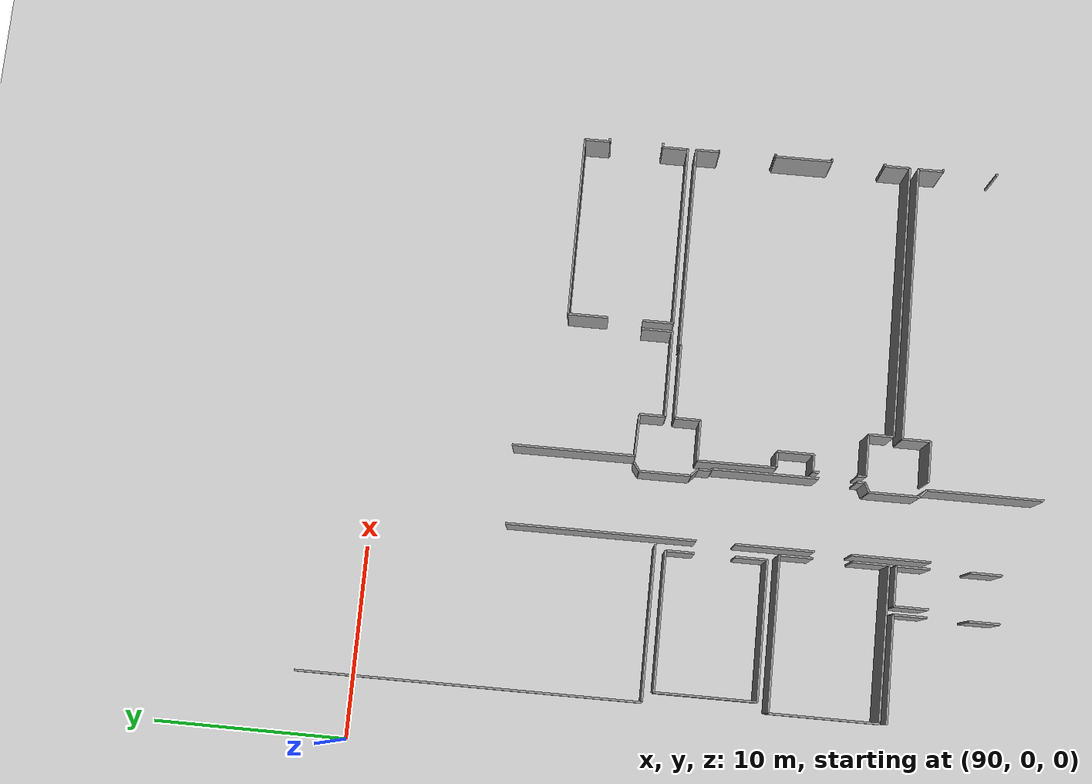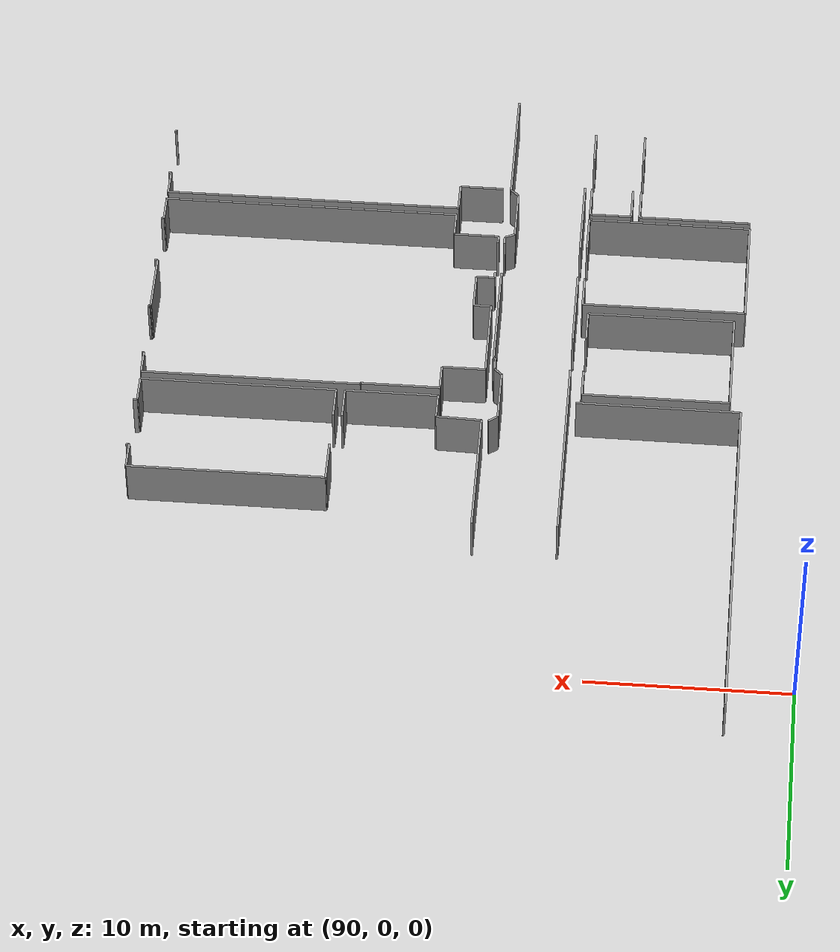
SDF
<sdf version="1.6">
 <world name="default">
  <model name="ground_plane">
   <static>1</static>
   <link name="link">
    <collision name="collision">
     <geometry><plane><normal>0 0 1</normal><size>100 100</size></plane></geometry>
     <surface><friction><ode><mu>100</mu><mu2>50</mu2></ode></friction></surface>
    </collision>
    <visual name="visual">
     <cast_shadows>0</cast_shadows>
     <geometry><plane><normal>0 0 1</normal><size>100 100</size></plane></geometry>
     <material>
      <script><uri>file://media/materials/scripts/gazebo.material</uri><name>Gazebo/Grey</name></script>
     </material>
    </visual>
   </link>
  </model>
  <model name="50036894">
   <static>1</static>
   <link name="Wall_636">
    <collision name="Wall_636_Collision">
     <geometry><box><size>4.0667220359 0.1 2.5</size></box></geometry>
     <pose>2.03336101795 0 1.25 0 0 0</pose>
    </collision>
    <visual name="Wall_636_Visual">
     <pose>2.03336101795 0 1.25 0 0 0</pose>
     <geometry><box><size>4.0667220359 0.1 2.5</size></box></geometry>
     <material>
      <script><uri>file://media/materials/scripts/gazebo.material</uri><name>Gazebo/Grey</name></script>
      <ambient>1 1 1 1</ambient>
     </material>
    </visual>
    <pose>224.466775292 -96.5278420582 0 0 0 1.57079632679</pose>
   </link>
   <link name="Wall_637">
    <collision name="Wall_637_Collision">
     <geometry><box><size>4.05987484863 0.1 2.5</size></box></geometry>
     <pose>2.02993742432 0 1.25 0 0 0</pose>
    </collision>
    <visual name="Wall_637_Visual">
     <pose>2.02993742432 0 1.25 0 0 0</pose>
     <geometry><box><size>4.05987484863 0.1 2.5</size></box></geometry>
     <material>
      <script><uri>file://media/materials/scripts/gazebo.material</uri><name>Gazebo/Grey</name></script>
      <ambient>1 1 1 1</ambient>
     </material>
    </visual>
    <pose>224.466775292 -90.5307204129 0 0 0 1.57079632679</pose>
   </link>
   <link name="Wall_638">
    <collision name="Wall_638_Collision">
     <geometry><box><size>9.86552885012 0.1 2.5</size></box></geometry>
     <pose>4.93276442506 0 1.25 0 0 0</pose>
    </collision>
    <visual name="Wall_638_Visual">
     <pose>4.93276442506 0 1.25 0 0 0</pose>
     <geometry><box><size>9.86552885012 0.1 2.5</size></box></geometry>
     <material>
      <script><uri>file://media/materials/scripts/gazebo.material</uri><name>Gazebo/Grey</name></script>
      <ambient>1 1 1 1</ambient>
     </material>
    </visual>
    <pose>224.466775292 -84.4542221151 0 0 0 1.57079632679</pose>
   </link>
   <link name="Wall_680">
    <collision name="Wall_680_Collision">
     <geometry><box><size>0.539785866235 0.1 2.5</size></box></geometry>
     <pose>0.269892933118 0 1.25 0 0 0</pose>
    </collision>
    <visual name="Wall_680_Visual">
     <pose>0.269892933118 0 1.25 0 0 0</pose>
     <geometry><box><size>0.539785866235 0.1 2.5</size></box></geometry>
     <material>
      <script><uri>file://media/materials/scripts/gazebo.material</uri><name>Gazebo/Grey</name></script>
      <ambient>1 1 1 1</ambient>
     </material>
    </visual>
    <pose>228.240336273 -80.9068719132 0 0 0 -2.51970472014</pose>
   </link>
   <link name="Wall_681">
    <collision name="Wall_681_Collision">
     <geometry><box><size>2.67192463022 0.1 2.5</size></box></geometry>
     <pose>1.33596231511 0 1.25 0 0 0</pose>
    </collision>
    <visual name="Wall_681_Visual">
     <pose>1.33596231511 0 1.25 0 0 0</pose>
     <geometry><box><size>2.67192463022 0.1 2.5</size></box></geometry>
     <material>
      <script><uri>file://media/materials/scripts/gazebo.material</uri><name>Gazebo/Grey</name></script>
      <ambient>1 1 1 1</ambient>
     </material>
    </visual>
    <pose>227.801609089 -81.2213353283 0 0 0 -1.57079632679</pose>
   </link>
   <link name="Wall_682">
    <collision name="Wall_682_Collision">
     <geometry><box><size>0.514282648867 0.1 2.5</size></box></geometry>
     <pose>0.257141324433 0 1.25 0 0 0</pose>
    </collision>
    <visual name="Wall_682_Visual">
     <pose>0.257141324433 0 1.25 0 0 0</pose>
     <geometry><box><size>0.514282648867 0.1 2.5</size></box></geometry>
     <material>
      <script><uri>file://media/materials/scripts/gazebo.material</uri><name>Gazebo/Grey</name></script>
      <ambient>1 1 1 1</ambient>
     </material>
    </visual>
    <pose>227.801609089 -83.8932599585 0 0 0 -0.759941508248</pose>
   </link>
   <link name="Wall_683">
    <collision name="Wall_683_Collision">
     <geometry><box><size>0.695877105669 0.1 2.5</size></box></geometry>
     <pose>0.347938552834 0 1.25 0 0 0</pose>
    </collision>
    <visual name="Wall_683_Visual">
     <pose>0.347938552834 0 1.25 0 0 0</pose>
     <geometry><box><size>0.695877105669 0.1 2.5</size></box></geometry>
     <material>
      <script><uri>file://media/materials/scripts/gazebo.material</uri><name>Gazebo/Grey</name></script>
      <ambient>1 1 1 1</ambient>
     </material>
    </visual>
    <pose>228.174400396 -84.2475384996 0 0 0 -1.57079632679</pose>
   </link>
   <link name="Wall_684">
    <collision name="Wall_684_Collision">
     <geometry><box><size>0.0912958301898 0.1 2.5</size></box></geometry>
     <pose>0.0456479150949 0 1.25 0 0 0</pose>
    </collision>
    <visual name="Wall_684_Visual">
     <pose>0.0456479150949 0 1.25 0 0 0</pose>
     <geometry><box><size>0.0912958301898 0.1 2.5</size></box></geometry>
     <material>
      <script><uri>file://media/materials/scripts/gazebo.material</uri><name>Gazebo/Grey</name></script>
      <ambient>1 1 1 1</ambient>
     </material>
    </visual>
    <pose>228.174400396 -84.9434156052 0 0 0 0.0</pose>
   </link>
   <link name="Wall_685">
    <collision name="Wall_685_Collision">
     <geometry><box><size>5.56397365101 0.1 2.5</size></box></geometry>
     <pose>2.7819868255 0 1.25 0 0 0</pose>
    </collision>
    <visual name="Wall_685_Visual">
     <pose>2.7819868255 0 1.25 0 0 0</pose>
     <geometry><box><size>5.56397365101 0.1 2.5</size></box></geometry>
     <material>
      <script><uri>file://media/materials/scripts/gazebo.material</uri><name>Gazebo/Grey</name></script>
      <ambient>1 1 1 1</ambient>
     </material>
    </visual>
    <pose>228.265696226 -84.9434156052 0 0 0 -1.57079632679</pose>
   </link>
   <link name="Wall_686">
    <collision name="Wall_686_Collision">
     <geometry><box><size>0.39789765991 0.1 2.5</size></box></geometry>
     <pose>0.198948829955 0 1.25 0 0 0</pose>
    </collision>
    <visual name="Wall_686_Visual">
     <pose>0.198948829955 0 1.25 0 0 0</pose>
     <geometry><box><size>0.39789765991 0.1 2.5</size></box></geometry>
     <material>
      <script><uri>file://media/materials/scripts/gazebo.material</uri><name>Gazebo/Grey</name></script>
      <ambient>1 1 1 1</ambient>
     </material>
    </visual>
    <pose>228.265696226 -92.5039783426 0 0 0 -1.57079632679</pose>
   </link>
   <link name="Wall_687">
    <collision name="Wall_687_Collision">
     <geometry><box><size>0.532518250814 0.1 2.5</size></box></geometry>
     <pose>0.266259125407 0 1.25 0 0 0</pose>
    </collision>
    <visual name="Wall_687_Visual">
     <pose>0.266259125407 0 1.25 0 0 0</pose>
     <geometry><box><size>0.532518250814 0.1 2.5</size></box></geometry>
     <material>
      <script><uri>file://media/materials/scripts/gazebo.material</uri><name>Gazebo/Grey</name></script>
      <ambient>1 1 1 1</ambient>
     </material>
    </visual>
    <pose>228.265696226 -92.9018760025 0 0 0 -2.69072390167</pose>
   </link>
   <link name="Wall_688">
    <collision name="Wall_688_Collision">
     <geometry><box><size>2.6359134972 0.1 2.5</size></box></geometry>
     <pose>1.3179567486 0 1.25 0 0 0</pose>
    </collision>
    <visual name="Wall_688_Visual">
     <pose>1.3179567486 0 1.25 0 0 0</pose>
     <geometry><box><size>2.6359134972 0.1 2.5</size></box></geometry>
     <material>
      <script><uri>file://media/materials/scripts/gazebo.material</uri><name>Gazebo/Grey</name></script>
      <ambient>1 1 1 1</ambient>
     </material>
    </visual>
    <pose>227.786393117 -93.1339195709 0 0 0 -1.57079632679</pose>
   </link>
   <link name="Wall_689">
    <collision name="Wall_689_Collision">
     <geometry><box><size>0.522518489133 0.1 2.5</size></box></geometry>
     <pose>0.261259244566 0 1.25 0 0 0</pose>
    </collision>
    <visual name="Wall_689_Visual">
     <pose>0.261259244566 0 1.25 0 0 0</pose>
     <geometry><box><size>0.522518489133 0.1 2.5</size></box></geometry>
     <material>
      <script><uri>file://media/materials/scripts/gazebo.material</uri><name>Gazebo/Grey</name></script>
      <ambient>1 1 1 1</ambient>
     </material>
    </visual>
    <pose>227.786393117 -95.7698330681 0 0 0 -0.741112468999</pose>
   </link>
   <link name="Wall_690">
    <collision name="Wall_690_Collision">
     <geometry><box><size>6.02958238498 0.1 2.5</size></box></geometry>
     <pose>3.01479119249 0 1.25 0 0 0</pose>
    </collision>
    <visual name="Wall_690_Visual">
     <pose>3.01479119249 0 1.25 0 0 0</pose>
     <geometry><box><size>6.02958238498 0.1 2.5</size></box></geometry>
     <material>
      <script><uri>file://media/materials/scripts/gazebo.material</uri><name>Gazebo/Grey</name></script>
      <ambient>1 1 1 1</ambient>
     </material>
    </visual>
    <pose>228.1718644 -96.122590012 0 0 0 -1.57079632679</pose>
   </link>
   <link name="Wall_703">
    <collision name="Wall_703_Collision">
     <geometry><box><size>5.54875767931 0.1 2.5</size></box></geometry>
     <pose>2.77437883966 0 1.25 0 0 0</pose>
    </collision>
    <visual name="Wall_703_Visual">
     <pose>2.77437883966 0 1.25 0 0 0</pose>
     <geometry><box><size>5.54875767931 0.1 2.5</size></box></geometry>
     <material>
      <script><uri>file://media/materials/scripts/gazebo.material</uri><name>Gazebo/Grey</name></script>
      <ambient>1 1 1 1</ambient>
     </material>
    </visual>
    <pose>216.077702895 -94.7485877676 0 0 0 0.0</pose>
   </link>
   <link name="Wall_704">
    <collision name="Wall_704_Collision">
     <geometry><box><size>1.74577915285 0.1 2.5</size></box></geometry>
     <pose>0.872889576425 0 1.25 0 0 0</pose>
    </collision>
    <visual name="Wall_704_Visual">
     <pose>0.872889576425 0 1.25 0 0 0</pose>
     <geometry><box><size>1.74577915285 0.1 2.5</size></box></geometry>
     <material>
      <script><uri>file://media/materials/scripts/gazebo.material</uri><name>Gazebo/Grey</name></script>
      <ambient>1 1 1 1</ambient>
     </material>
    </visual>
    <pose>221.626460575 -94.7485877676 0 0 0 -1.57079632679</pose>
   </link>
   <link name="Wall_705">
    <collision name="Wall_705_Collision">
     <geometry><box><size>1.61390739813 0.1 2.5</size></box></geometry>
     <pose>0.806953699066 0 1.25 0 0 0</pose>
    </collision>
    <visual name="Wall_705_Visual">
     <pose>0.806953699066 0 1.25 0 0 0</pose>
     <geometry><box><size>1.61390739813 0.1 2.5</size></box></geometry>
     <material>
      <script><uri>file://media/materials/scripts/gazebo.material</uri><name>Gazebo/Grey</name></script>
      <ambient>1 1 1 1</ambient>
     </material>
    </visual>
    <pose>221.626460575 -98.6126837804 0 0 0 -1.57079632679</pose>
   </link>
   <link name="Wall_709">
    <collision name="Wall_709_Collision">
     <geometry><box><size>1.76378471936 0.1 2.5</size></box></geometry>
     <pose>0.88189235968 0 1.25 0 0 0</pose>
    </collision>
    <visual name="Wall_709_Visual">
     <pose>0.88189235968 0 1.25 0 0 0</pose>
     <geometry><box><size>1.76378471936 0.1 2.5</size></box></geometry>
     <material>
      <script><uri>file://media/materials/scripts/gazebo.material</uri><name>Gazebo/Grey</name></script>
      <ambient>1 1 1 1</ambient>
     </material>
    </visual>
    <pose>222.042363801 -96.5230236672 0 0 0 1.57079632679</pose>
   </link>
   <link name="Wall_710">
    <collision name="Wall_710_Collision">
     <geometry><box><size>2.06937215097 0.1 2.5</size></box></geometry>
     <pose>1.03468607548 0 1.25 0 0 0</pose>
    </collision>
    <visual name="Wall_710_Visual">
     <pose>1.03468607548 0 1.25 0 0 0</pose>
     <geometry><box><size>2.06937215097 0.1 2.5</size></box></geometry>
     <material>
      <script><uri>file://media/materials/scripts/gazebo.material</uri><name>Gazebo/Grey</name></script>
      <ambient>1 1 1 1</ambient>
     </material>
    </visual>
    <pose>222.042363801 -94.7592389478 0 0 0 0.0</pose>
   </link>
   <link name="Wall_711">
    <collision name="Wall_711_Collision">
     <geometry><box><size>1.75440153681 0.1 2.5</size></box></geometry>
     <pose>0.877200768407 0 1.25 0 0 0</pose>
    </collision>
    <visual name="Wall_711_Visual">
     <pose>0.877200768407 0 1.25 0 0 0</pose>
     <geometry><box><size>1.75440153681 0.1 2.5</size></box></geometry>
     <material>
      <script><uri>file://media/materials/scripts/gazebo.material</uri><name>Gazebo/Grey</name></script>
      <ambient>1 1 1 1</ambient>
     </material>
    </visual>
    <pose>224.111735952 -94.7592389478 0 0 0 -1.57079632679</pose>
   </link>
   <link name="Wall_712">
    <collision name="Wall_712_Collision">
     <geometry><box><size>1.63901375143 0.1 2.5</size></box></geometry>
     <pose>0.819506875717 0 1.25 0 0 0</pose>
    </collision>
    <visual name="Wall_712_Visual">
     <pose>0.819506875717 0 1.25 0 0 0</pose>
     <geometry><box><size>1.63901375143 0.1 2.5</size></box></geometry>
     <material>
      <script><uri>file://media/materials/scripts/gazebo.material</uri><name>Gazebo/Grey</name></script>
      <ambient>1 1 1 1</ambient>
     </material>
    </visual>
    <pose>224.111735952 -98.5748974507 0 0 0 -1.57079632679</pose>
   </link>
   <link name="Wall_714">
    <collision name="Wall_714_Collision">
     <geometry><box><size>2.15813198587 0.1 2.5</size></box></geometry>
     <pose>1.07906599294 0 1.25 0 0 0</pose>
    </collision>
    <visual name="Wall_714_Visual">
     <pose>1.07906599294 0 1.25 0 0 0</pose>
     <geometry><box><size>2.15813198587 0.1 2.5</size></box></geometry>
     <material>
      <script><uri>file://media/materials/scripts/gazebo.material</uri><name>Gazebo/Grey</name></script>
      <ambient>1 1 1 1</ambient>
     </material>
    </visual>
    <pose>228.57001566 -96.1631659365 0 0 0 0.0</pose>
   </link>
   <link name="Wall_715">
    <collision name="Wall_715_Collision">
     <geometry><box><size>1.46605887313 0.1 2.5</size></box></geometry>
     <pose>0.733029436565 0 1.25 0 0 0</pose>
    </collision>
    <visual name="Wall_715_Visual">
     <pose>0.733029436565 0 1.25 0 0 0</pose>
     <geometry><box><size>1.46605887313 0.1 2.5</size></box></geometry>
     <material>
      <script><uri>file://media/materials/scripts/gazebo.material</uri><name>Gazebo/Grey</name></script>
      <ambient>1 1 1 1</ambient>
     </material>
    </visual>
    <pose>230.728147646 -96.1631659365 0 0 0 1.57079632679</pose>
   </link>
   <link name="Wall_716">
    <collision name="Wall_716_Collision">
     <geometry><box><size>14.6656607219 0.1 2.5</size></box></geometry>
     <pose>7.33283036094 0 1.25 0 0 0</pose>
    </collision>
    <visual name="Wall_716_Visual">
     <pose>7.33283036094 0 1.25 0 0 0</pose>
     <geometry><box><size>14.6656607219 0.1 2.5</size></box></geometry>
     <material>
      <script><uri>file://media/materials/scripts/gazebo.material</uri><name>Gazebo/Grey</name></script>
      <ambient>1 1 1 1</ambient>
     </material>
    </visual>
    <pose>230.728147646 -94.6971070634 0 0 0 0.0</pose>
   </link>
   <link name="Wall_717">
    <collision name="Wall_717_Collision">
     <geometry><box><size>1.33089032454 0.1 2.5</size></box></geometry>
     <pose>0.665445162272 0 1.25 0 0 0</pose>
    </collision>
    <visual name="Wall_717_Visual">
     <pose>0.665445162272 0 1.25 0 0 0</pose>
     <geometry><box><size>1.33089032454 0.1 2.5</size></box></geometry>
     <material>
      <script><uri>file://media/materials/scripts/gazebo.material</uri><name>Gazebo/Grey</name></script>
      <ambient>1 1 1 1</ambient>
     </material>
    </visual>
    <pose>245.393808368 -94.6971070634 0 0 0 -1.57079632679</pose>
   </link>
   <link name="Wall_718">
    <collision name="Wall_718_Collision">
     <geometry><box><size>0.126799764152 0.1 2.5</size></box></geometry>
     <pose>0.0633998820762 0 1.25 0 0 0</pose>
    </collision>
    <visual name="Wall_718_Visual">
     <pose>0.0633998820762 0 1.25 0 0 0</pose>
     <geometry><box><size>0.126799764152 0.1 2.5</size></box></geometry>
     <material>
      <script><uri>file://media/materials/scripts/gazebo.material</uri><name>Gazebo/Grey</name></script>
      <ambient>1 1 1 1</ambient>
     </material>
    </visual>
    <pose>245.393808368 -96.0279973879 0 0 0 0.0</pose>
   </link>
   <link name="Wall_719">
    <collision name="Wall_719_Collision">
     <geometry><box><size>0.109047797171 0.1 2.5</size></box></geometry>
     <pose>0.0545238985856 0 1.25 0 0 0</pose>
    </collision>
    <visual name="Wall_719_Visual">
     <pose>0.0545238985856 0 1.25 0 0 0</pose>
     <geometry><box><size>0.109047797171 0.1 2.5</size></box></geometry>
     <material>
      <script><uri>file://media/materials/scripts/gazebo.material</uri><name>Gazebo/Grey</name></script>
      <ambient>1 1 1 1</ambient>
     </material>
    </visual>
    <pose>245.520608132 -98.8959544535 0 0 0 3.14159265359</pose>
   </link>
   <link name="Wall_728">
    <collision name="Wall_728_Collision">
     <geometry><box><size>2.13277203304 0.1 2.5</size></box></geometry>
     <pose>1.06638601652 0 1.25 0 0 0</pose>
    </collision>
    <visual name="Wall_728_Visual">
     <pose>1.06638601652 0 1.25 0 0 0</pose>
     <geometry><box><size>2.13277203304 0.1 2.5</size></box></geometry>
     <material>
      <script><uri>file://media/materials/scripts/gazebo.material</uri><name>Gazebo/Grey</name></script>
      <ambient>1 1 1 1</ambient>
     </material>
    </visual>
    <pose>228.610591584 -84.170444243 0 0 0 0.0</pose>
   </link>
   <link name="Wall_729">
    <collision name="Wall_729_Collision">
     <geometry><box><size>1.33418711841 0.1 2.5</size></box></geometry>
     <pose>0.667093559206 0 1.25 0 0 0</pose>
    </collision>
    <visual name="Wall_729_Visual">
     <pose>0.667093559206 0 1.25 0 0 0</pose>
     <geometry><box><size>1.33418711841 0.1 2.5</size></box></geometry>
     <material>
      <script><uri>file://media/materials/scripts/gazebo.material</uri><name>Gazebo/Grey</name></script>
      <ambient>1 1 1 1</ambient>
     </material>
    </visual>
    <pose>230.743363617 -84.170444243 0 0 0 1.57079632679</pose>
   </link>
   <link name="Wall_730">
    <collision name="Wall_730_Collision">
     <geometry><box><size>3.89782475005 0.1 2.5</size></box></geometry>
     <pose>1.94891237502 0 1.25 0 0 0</pose>
    </collision>
    <visual name="Wall_730_Visual">
     <pose>1.94891237502 0 1.25 0 0 0</pose>
     <geometry><box><size>3.89782475005 0.1 2.5</size></box></geometry>
     <material>
      <script><uri>file://media/materials/scripts/gazebo.material</uri><name>Gazebo/Grey</name></script>
      <ambient>1 1 1 1</ambient>
     </material>
    </visual>
    <pose>230.743363617 -82.8362571246 0 0 0 0.0</pose>
   </link>
   <link name="Wall_731">
    <collision name="Wall_731_Collision">
     <geometry><box><size>0.0568062943403 0.1 2.5</size></box></geometry>
     <pose>0.0284031471702 0 1.25 0 0 0</pose>
    </collision>
    <visual name="Wall_731_Visual">
     <pose>0.0284031471702 0 1.25 0 0 0</pose>
     <geometry><box><size>0.0568062943403 0.1 2.5</size></box></geometry>
     <material>
      <script><uri>file://media/materials/scripts/gazebo.material</uri><name>Gazebo/Grey</name></script>
      <ambient>1 1 1 1</ambient>
     </material>
    </visual>
    <pose>234.641188367 -82.8362571246 0 0 0 1.57079632679</pose>
   </link>
   <link name="Wall_732">
    <collision name="Wall_732_Collision">
     <geometry><box><size>10.7500840048 0.1 2.5</size></box></geometry>
     <pose>5.37504200242 0 1.25 0 0 0</pose>
    </collision>
    <visual name="Wall_732_Visual">
     <pose>5.37504200242 0 1.25 0 0 0</pose>
     <geometry><box><size>10.7500840048 0.1 2.5</size></box></geometry>
     <material>
      <script><uri>file://media/materials/scripts/gazebo.material</uri><name>Gazebo/Grey</name></script>
      <ambient>1 1 1 1</ambient>
     </material>
    </visual>
    <pose>234.641188367 -82.7794508302 0 0 0 0.0</pose>
   </link>
   <link name="Wall_733">
    <collision name="Wall_733_Collision">
     <geometry><box><size>1.22590011983 0.1 2.5</size></box></geometry>
     <pose>0.612950059913 0 1.25 0 0 0</pose>
    </collision>
    <visual name="Wall_733_Visual">
     <pose>0.612950059913 0 1.25 0 0 0</pose>
     <geometry><box><size>1.22590011983 0.1 2.5</size></box></geometry>
     <material>
      <script><uri>file://media/materials/scripts/gazebo.material</uri><name>Gazebo/Grey</name></script>
      <ambient>1 1 1 1</ambient>
     </material>
    </visual>
    <pose>245.391272372 -82.7794508302 0 0 0 -1.57079632679</pose>
   </link>
   <link name="Wall_734">
    <collision name="Wall_734_Collision">
     <geometry><box><size>0.114119787737 0.1 2.5</size></box></geometry>
     <pose>0.0570598938686 0 1.25 0 0 0</pose>
    </collision>
    <visual name="Wall_734_Visual">
     <pose>0.0570598938686 0 1.25 0 0 0</pose>
     <geometry><box><size>0.114119787737 0.1 2.5</size></box></geometry>
     <material>
      <script><uri>file://media/materials/scripts/gazebo.material</uri><name>Gazebo/Grey</name></script>
      <ambient>1 1 1 1</ambient>
     </material>
    </visual>
    <pose>245.391272372 -84.00535095 0 0 0 0.0</pose>
   </link>
   <link name="Wall_735">
    <collision name="Wall_735_Collision">
     <geometry><box><size>0.0763334580198 0.1 2.5</size></box></geometry>
     <pose>0.0381667290099 0 1.25 0 0 0</pose>
    </collision>
    <visual name="Wall_735_Visual">
     <pose>0.0381667290099 0 1.25 0 0 0</pose>
     <geometry><box><size>0.0763334580198 0.1 2.5</size></box></geometry>
     <material>
      <script><uri>file://media/materials/scripts/gazebo.material</uri><name>Gazebo/Grey</name></script>
      <ambient>1 1 1 1</ambient>
     </material>
    </visual>
    <pose>245.50539216 -86.9892030001 0 0 0 -1.57079632679</pose>
   </link>
   <link name="Wall_736">
    <collision name="Wall_736_Collision">
     <geometry><box><size>0.0963678207558 0.1 2.5</size></box></geometry>
     <pose>0.0481839103779 0 1.25 0 0 0</pose>
    </collision>
    <visual name="Wall_736_Visual">
     <pose>0.0481839103779 0 1.25 0 0 0</pose>
     <geometry><box><size>0.0963678207558 0.1 2.5</size></box></geometry>
     <material>
      <script><uri>file://media/materials/scripts/gazebo.material</uri><name>Gazebo/Grey</name></script>
      <ambient>1 1 1 1</ambient>
     </material>
    </visual>
    <pose>245.50539216 -87.0655364581 0 0 0 3.14159265359</pose>
   </link>
   <link name="Wall_737">
    <collision name="Wall_737_Collision">
     <geometry><box><size>3.00895840334 0.1 2.5</size></box></geometry>
     <pose>1.50447920167 0 1.25 0 0 0</pose>
    </collision>
    <visual name="Wall_737_Visual">
     <pose>1.50447920167 0 1.25 0 0 0</pose>
     <geometry><box><size>3.00895840334 0.1 2.5</size></box></geometry>
     <material>
      <script><uri>file://media/materials/scripts/gazebo.material</uri><name>Gazebo/Grey</name></script>
      <ambient>1 1 1 1</ambient>
     </material>
    </visual>
    <pose>245.409024339 -87.0655364581 0 0 0 -1.57079632679</pose>
   </link>
   <link name="Wall_738">
    <collision name="Wall_738_Collision">
     <geometry><box><size>0.1496237217 0.1 2.5</size></box></geometry>
     <pose>0.0748118608499 0 1.25 0 0 0</pose>
    </collision>
    <visual name="Wall_738_Visual">
     <pose>0.0748118608499 0 1.25 0 0 0</pose>
     <geometry><box><size>0.1496237217 0.1 2.5</size></box></geometry>
     <material>
      <script><uri>file://media/materials/scripts/gazebo.material</uri><name>Gazebo/Grey</name></script>
      <ambient>1 1 1 1</ambient>
     </material>
    </visual>
    <pose>245.409024339 -90.0744948614 0 0 0 0.0</pose>
   </link>
   <link name="Wall_739">
    <collision name="Wall_739_Collision">
     <geometry><box><size>0.147087726417 0.1 2.5</size></box></geometry>
     <pose>0.0735438632084 0 1.25 0 0 0</pose>
    </collision>
    <visual name="Wall_739_Visual">
     <pose>0.0735438632084 0 1.25 0 0 0</pose>
     <geometry><box><size>0.147087726417 0.1 2.5</size></box></geometry>
     <material>
      <script><uri>file://media/materials/scripts/gazebo.material</uri><name>Gazebo/Grey</name></script>
      <ambient>1 1 1 1</ambient>
     </material>
    </visual>
    <pose>245.558648061 -92.9178527728 0 0 0 3.14159265359</pose>
   </link>
   <link name="Wall_740">
    <collision name="Wall_740_Collision">
     <geometry><box><size>1.32632553303 0.1 2.5</size></box></geometry>
     <pose>0.663162766517 0 1.25 0 0 0</pose>
    </collision>
    <visual name="Wall_740_Visual">
     <pose>0.663162766517 0 1.25 0 0 0</pose>
     <geometry><box><size>1.32632553303 0.1 2.5</size></box></geometry>
     <material>
      <script><uri>file://media/materials/scripts/gazebo.material</uri><name>Gazebo/Grey</name></script>
      <ambient>1 1 1 1</ambient>
     </material>
    </visual>
    <pose>245.411560334 -92.9178527728 0 0 0 -1.57079632679</pose>
   </link>
   <link name="Wall_741">
    <collision name="Wall_741_Collision">
     <geometry><box><size>14.6073328304 0.1 2.5</size></box></geometry>
     <pose>7.30366641518 0 1.25 0 0 0</pose>
    </collision>
    <visual name="Wall_741_Visual">
     <pose>7.30366641518 0 1.25 0 0 0</pose>
     <geometry><box><size>14.6073328304 0.1 2.5</size></box></geometry>
     <material>
      <script><uri>file://media/materials/scripts/gazebo.material</uri><name>Gazebo/Grey</name></script>
      <ambient>1 1 1 1</ambient>
     </material>
    </visual>
    <pose>245.411560334 -94.2441783058 0 0 0 3.14159265359</pose>
   </link>
   <link name="Wall_742">
    <collision name="Wall_742_Collision">
     <geometry><box><size>1.31212395945 0.1 2.5</size></box></geometry>
     <pose>0.656061979725 0 1.25 0 0 0</pose>
    </collision>
    <visual name="Wall_742_Visual">
     <pose>0.656061979725 0 1.25 0 0 0</pose>
     <geometry><box><size>1.31212395945 0.1 2.5</size></box></geometry>
     <material>
      <script><uri>file://media/materials/scripts/gazebo.material</uri><name>Gazebo/Grey</name></script>
      <ambient>1 1 1 1</ambient>
     </material>
    </visual>
    <pose>230.804227504 -94.2441783058 0 0 0 1.57079632679</pose>
   </link>
   <link name="Wall_743">
    <collision name="Wall_743_Collision">
     <geometry><box><size>2.21645987738 0.1 2.5</size></box></geometry>
     <pose>1.10822993869 0 1.25 0 0 0</pose>
    </collision>
    <visual name="Wall_743_Visual">
     <pose>1.10822993869 0 1.25 0 0 0</pose>
     <geometry><box><size>2.21645987738 0.1 2.5</size></box></geometry>
     <material>
      <script><uri>file://media/materials/scripts/gazebo.material</uri><name>Gazebo/Grey</name></script>
      <ambient>1 1 1 1</ambient>
     </material>
    </visual>
    <pose>230.804227504 -92.9320543464 0 0 0 3.14159265359</pose>
   </link>
   <link name="Wall_744">
    <collision name="Wall_744_Collision">
     <geometry><box><size>0.421989615099 0.1 2.5</size></box></geometry>
     <pose>0.21099480755 0 1.25 0 0 0</pose>
    </collision>
    <visual name="Wall_744_Visual">
     <pose>0.21099480755 0 1.25 0 0 0</pose>
     <geometry><box><size>0.421989615099 0.1 2.5</size></box></geometry>
     <material>
      <script><uri>file://media/materials/scripts/gazebo.material</uri><name>Gazebo/Grey</name></script>
      <ambient>1 1 1 1</ambient>
     </material>
    </visual>
    <pose>228.587767627 -92.9320543464 0 0 0 1.57079632679</pose>
   </link>
   <link name="Wall_745">
    <collision name="Wall_745_Collision">
     <geometry><box><size>0.328918588211 0.1 2.5</size></box></geometry>
     <pose>0.164459294106 0 1.25 0 0 0</pose>
    </collision>
    <visual name="Wall_745_Visual">
     <pose>0.164459294106 0 1.25 0 0 0</pose>
     <geometry><box><size>0.328918588211 0.1 2.5</size></box></geometry>
     <material>
      <script><uri>file://media/materials/scripts/gazebo.material</uri><name>Gazebo/Grey</name></script>
      <ambient>1 1 1 1</ambient>
     </material>
    </visual>
    <pose>228.587767627 -90.5086572539 0 0 0 1.57079632679</pose>
   </link>
   <link name="Wall_746">
    <collision name="Wall_746_Collision">
     <geometry><box><size>0.905350316048 0.1 2.5</size></box></geometry>
     <pose>0.452675158024 0 1.25 0 0 0</pose>
    </collision>
    <visual name="Wall_746_Visual">
     <pose>0.452675158024 0 1.25 0 0 0</pose>
     <geometry><box><size>0.905350316048 0.1 2.5</size></box></geometry>
     <material>
      <script><uri>file://media/materials/scripts/gazebo.material</uri><name>Gazebo/Grey</name></script>
      <ambient>1 1 1 1</ambient>
     </material>
    </visual>
    <pose>228.587767627 -90.1797386657 0 0 0 0.0</pose>
   </link>
   <link name="Wall_747">
    <collision name="Wall_747_Collision">
     <geometry><box><size>1.89667087219 0.1 2.5</size></box></geometry>
     <pose>0.948335436096 0 1.25 0 0 0</pose>
    </collision>
    <visual name="Wall_747_Visual">
     <pose>0.948335436096 0 1.25 0 0 0</pose>
     <geometry><box><size>1.89667087219 0.1 2.5</size></box></geometry>
     <material>
      <script><uri>file://media/materials/scripts/gazebo.material</uri><name>Gazebo/Grey</name></script>
      <ambient>1 1 1 1</ambient>
     </material>
    </visual>
    <pose>229.493117943 -90.1797386657 0 0 0 1.57079632679</pose>
   </link>
   <link name="Wall_748">
    <collision name="Wall_748_Collision">
     <geometry><box><size>0.867310386803 0.1 2.5</size></box></geometry>
     <pose>0.433655193401 0 1.25 0 0 0</pose>
    </collision>
    <visual name="Wall_748_Visual">
     <pose>0.433655193401 0 1.25 0 0 0</pose>
     <geometry><box><size>0.867310386803 0.1 2.5</size></box></geometry>
     <material>
      <script><uri>file://media/materials/scripts/gazebo.material</uri><name>Gazebo/Grey</name></script>
      <ambient>1 1 1 1</ambient>
     </material>
    </visual>
    <pose>229.493117943 -88.2830677935 0 0 0 3.14159265359</pose>
   </link>
   <link name="Wall_749">
    <collision name="Wall_749_Collision">
     <geometry><box><size>4.11265169861 0.1 2.5</size></box></geometry>
     <pose>2.05632584931 0 1.25 0 0 0</pose>
    </collision>
    <visual name="Wall_749_Visual">
     <pose>2.05632584931 0 1.25 0 0 0</pose>
     <geometry><box><size>4.11265169861 0.1 2.5</size></box></geometry>
     <material>
      <script><uri>file://media/materials/scripts/gazebo.material</uri><name>Gazebo/Grey</name></script>
      <ambient>1 1 1 1</ambient>
     </material>
    </visual>
    <pose>228.625807556 -88.2830677935 0 0 0 1.57449613109</pose>
   </link>
   <link name="Wall_750">
    <collision name="Wall_750_Collision">
     <geometry><box><size>5.61849754959 0.1 2.5</size></box></geometry>
     <pose>2.8092487748 0 1.25 0 0 0</pose>
    </collision>
    <visual name="Wall_750_Visual">
     <pose>2.8092487748 0 1.25 0 0 0</pose>
     <geometry><box><size>5.61849754959 0.1 2.5</size></box></geometry>
     <material>
      <script><uri>file://media/materials/scripts/gazebo.material</uri><name>Gazebo/Grey</name></script>
      <ambient>1 1 1 1</ambient>
     </material>
    </visual>
    <pose>216.090382872 -94.3780788568 0 0 0 1.57079632679</pose>
   </link>
   <link name="Wall_751">
    <collision name="Wall_751_Collision">
     <geometry><box><size>8.03149706142 0.1 2.5</size></box></geometry>
     <pose>4.01574853071 0 1.25 0 0 0</pose>
    </collision>
    <visual name="Wall_751_Visual">
     <pose>4.01574853071 0 1.25 0 0 0</pose>
     <geometry><box><size>8.03149706142 0.1 2.5</size></box></geometry>
     <material>
      <script><uri>file://media/materials/scripts/gazebo.material</uri><name>Gazebo/Grey</name></script>
      <ambient>1 1 1 1</ambient>
     </material>
    </visual>
    <pose>216.090382872 -88.7595813072 0 0 0 0.0</pose>
   </link>
   <link name="Wall_752">
    <collision name="Wall_752_Collision">
     <geometry><box><size>1.72853438493 0.1 2.5</size></box></geometry>
     <pose>0.864267192463 0 1.25 0 0 0</pose>
    </collision>
    <visual name="Wall_752_Visual">
     <pose>0.864267192463 0 1.25 0 0 0</pose>
     <geometry><box><size>1.72853438493 0.1 2.5</size></box></geometry>
     <material>
      <script><uri>file://media/materials/scripts/gazebo.material</uri><name>Gazebo/Grey</name></script>
      <ambient>1 1 1 1</ambient>
     </material>
    </visual>
    <pose>224.121879933 -88.7595813072 0 0 0 -1.57079632679</pose>
   </link>
   <link name="Wall_753">
    <collision name="Wall_753_Collision">
     <geometry><box><size>1.899460467 0.1 2.5</size></box></geometry>
     <pose>0.949730233502 0 1.25 0 0 0</pose>
    </collision>
    <visual name="Wall_753_Visual">
     <pose>0.949730233502 0 1.25 0 0 0</pose>
     <geometry><box><size>1.899460467 0.1 2.5</size></box></geometry>
     <material>
      <script><uri>file://media/materials/scripts/gazebo.material</uri><name>Gazebo/Grey</name></script>
      <ambient>1 1 1 1</ambient>
     </material>
    </visual>
    <pose>224.121879933 -92.507528736 0 0 0 -1.57079632679</pose>
   </link>
   <link name="Wall_754">
    <collision name="Wall_754_Collision">
     <geometry><box><size>8.03154909439 0.1 2.5</size></box></geometry>
     <pose>4.0157745472 0 1.25 0 0 0</pose>
    </collision>
    <visual name="Wall_754_Visual">
     <pose>4.0157745472 0 1.25 0 0 0</pose>
     <geometry><box><size>8.03154909439 0.1 2.5</size></box></geometry>
     <material>
      <script><uri>file://media/materials/scripts/gazebo.material</uri><name>Gazebo/Grey</name></script>
      <ambient>1 1 1 1</ambient>
     </material>
    </visual>
    <pose>224.121879933 -94.406989203 0 0 0 3.13799304804</pose>
   </link>
   <link name="Wall_755">
    <collision name="Wall_755_Collision">
     <geometry><box><size>5.24443824534 0.1 2.5</size></box></geometry>
     <pose>2.62221912267 0 1.25 0 0 0</pose>
    </collision>
    <visual name="Wall_755_Visual">
     <pose>2.62221912267 0 1.25 0 0 0</pose>
     <geometry><box><size>5.24443824534 0.1 2.5</size></box></geometry>
     <material>
      <script><uri>file://media/materials/scripts/gazebo.material</uri><name>Gazebo/Grey</name></script>
      <ambient>1 1 1 1</ambient>
     </material>
    </visual>
    <pose>216.605189914 -88.1722447996 0 0 0 1.57079632679</pose>
   </link>
   <link name="Wall_756">
    <collision name="Wall_756_Collision">
     <geometry><box><size>7.21490658027 0.1 2.5</size></box></geometry>
     <pose>3.60745329014 0 1.25 0 0 0</pose>
    </collision>
    <visual name="Wall_756_Visual">
     <pose>3.60745329014 0 1.25 0 0 0</pose>
     <geometry><box><size>7.21490658027 0.1 2.5</size></box></geometry>
     <material>
      <script><uri>file://media/materials/scripts/gazebo.material</uri><name>Gazebo/Grey</name></script>
      <ambient>1 1 1 1</ambient>
     </material>
    </visual>
    <pose>216.605189914 -82.9278065543 0 0 0 0.0</pose>
   </link>
   <link name="Wall_757">
    <collision name="Wall_757_Collision">
     <geometry><box><size>1.48786843256 0.1 2.5</size></box></geometry>
     <pose>0.743934216282 0 1.25 0 0 0</pose>
    </collision>
    <visual name="Wall_757_Visual">
     <pose>0.743934216282 0 1.25 0 0 0</pose>
     <geometry><box><size>1.48786843256 0.1 2.5</size></box></geometry>
     <material>
      <script><uri>file://media/materials/scripts/gazebo.material</uri><name>Gazebo/Grey</name></script>
      <ambient>1 1 1 1</ambient>
     </material>
    </visual>
    <pose>223.820096495 -82.9278065543 0 0 0 -1.57079632679</pose>
   </link>
   <link name="Wall_758">
    <collision name="Wall_758_Collision">
     <geometry><box><size>1.65600491983 0.1 2.5</size></box></geometry>
     <pose>0.828002459915 0 1.25 0 0 0</pose>
    </collision>
    <visual name="Wall_758_Visual">
     <pose>0.828002459915 0 1.25 0 0 0</pose>
     <geometry><box><size>1.65600491983 0.1 2.5</size></box></geometry>
     <material>
      <script><uri>file://media/materials/scripts/gazebo.material</uri><name>Gazebo/Grey</name></script>
      <ambient>1 1 1 1</ambient>
     </material>
    </visual>
    <pose>223.820096495 -86.504320702 0 0 0 -1.57079632679</pose>
   </link>
   <link name="Wall_759">
    <collision name="Wall_759_Collision">
     <geometry><box><size>7.21491642563 0.1 2.5</size></box></geometry>
     <pose>3.60745821282 0 1.25 0 0 0</pose>
    </collision>
    <visual name="Wall_759_Visual">
     <pose>3.60745821282 0 1.25 0 0 0</pose>
     <geometry><box><size>7.21491642563 0.1 2.5</size></box></geometry>
     <material>
      <script><uri>file://media/materials/scripts/gazebo.material</uri><name>Gazebo/Grey</name></script>
      <ambient>1 1 1 1</ambient>
     </material>
    </visual>
    <pose>223.820096495 -88.1603256218 0 0 0 -3.139940634</pose>
   </link>
   <link name="Wall_760">
    <collision name="Wall_760_Collision">
     <geometry><box><size>17.6918638931 0.1 2.5</size></box></geometry>
     <pose>8.84593194657 0 1.25 0 0 0</pose>
    </collision>
    <visual name="Wall_760_Visual">
     <pose>8.84593194657 0 1.25 0 0 0</pose>
     <geometry><box><size>17.6918638931 0.1 2.5</size></box></geometry>
     <material>
      <script><uri>file://media/materials/scripts/gazebo.material</uri><name>Gazebo/Grey</name></script>
      <ambient>1 1 1 1</ambient>
     </material>
    </visual>
    <pose>216.052342943 -82.356446817 0 0 0 1.57079632679</pose>
   </link>
   <link name="Wall_764">
    <collision name="Wall_764_Collision">
     <geometry><box><size>8.02137054279 0.1 2.5</size></box></geometry>
     <pose>4.0106852714 0 1.25 0 0 0</pose>
    </collision>
    <visual name="Wall_764_Visual">
     <pose>4.0106852714 0 1.25 0 0 0</pose>
     <geometry><box><size>8.02137054279 0.1 2.5</size></box></geometry>
     <material>
      <script><uri>file://media/materials/scripts/gazebo.material</uri><name>Gazebo/Grey</name></script>
      <ambient>1 1 1 1</ambient>
     </material>
    </visual>
    <pose>224.073696023 -82.3731843859 0 0 0 3.13950603</pose>
   </link>
   <link name="Wall_765">
    <collision name="Wall_765_Collision">
     <geometry><box><size>6.39933049725 0.1 2.5</size></box></geometry>
     <pose>3.19966524862 0 1.25 0 0 0</pose>
    </collision>
    <visual name="Wall_765_Visual">
     <pose>3.19966524862 0 1.25 0 0 0</pose>
     <geometry><box><size>6.39933049725 0.1 2.5</size></box></geometry>
     <material>
      <script><uri>file://media/materials/scripts/gazebo.material</uri><name>Gazebo/Grey</name></script>
      <ambient>1 1 1 1</ambient>
     </material>
    </visual>
    <pose>228.577623646 -80.927413475 0 0 0 1.57079632679</pose>
   </link>
   <link name="Wall_772">
    <collision name="Wall_772_Collision">
     <geometry><box><size>1.60655301181 0.1 2.5</size></box></geometry>
     <pose>0.803276505906 0 1.25 0 0 0</pose>
    </collision>
    <visual name="Wall_772_Visual">
     <pose>0.803276505906 0 1.25 0 0 0</pose>
     <geometry><box><size>1.60655301181 0.1 2.5</size></box></geometry>
     <material>
      <script><uri>file://media/materials/scripts/gazebo.material</uri><name>Gazebo/Grey</name></script>
      <ambient>1 1 1 1</ambient>
     </material>
    </visual>
    <pose>235.341123066 -80.7222514566 0 0 0 -1.57079632679</pose>
   </link>
   <link name="Wall_773">
    <collision name="Wall_773_Collision">
     <geometry><box><size>4.55464752836 0.1 2.5</size></box></geometry>
     <pose>2.27732376418 0 1.25 0 0 0</pose>
    </collision>
    <visual name="Wall_773_Visual">
     <pose>2.27732376418 0 1.25 0 0 0</pose>
     <geometry><box><size>4.55464752836 0.1 2.5</size></box></geometry>
     <material>
      <script><uri>file://media/materials/scripts/gazebo.material</uri><name>Gazebo/Grey</name></script>
      <ambient>1 1 1 1</ambient>
     </material>
    </visual>
    <pose>235.341123066 -82.3288044684 0 0 0 3.14159265359</pose>
   </link>
   <link name="Wall_774">
    <collision name="Wall_774_Collision">
     <geometry><box><size>1.33393351888 0.1 2.5</size></box></geometry>
     <pose>0.666966759442 0 1.25 0 0 0</pose>
    </collision>
    <visual name="Wall_774_Visual">
     <pose>0.666966759442 0 1.25 0 0 0</pose>
     <geometry><box><size>1.33393351888 0.1 2.5</size></box></geometry>
     <material>
      <script><uri>file://media/materials/scripts/gazebo.material</uri><name>Gazebo/Grey</name></script>
      <ambient>1 1 1 1</ambient>
     </material>
    </visual>
    <pose>230.786475537 -82.3288044684 0 0 0 1.57079632679</pose>
   </link>
   <link name="Wall_775">
    <collision name="Wall_775_Collision">
     <geometry><box><size>2.20988171394 0.1 2.5</size></box></geometry>
     <pose>1.10494085697 0 1.25 0 0 0</pose>
    </collision>
    <visual name="Wall_775_Visual">
     <pose>1.10494085697 0 1.25 0 0 0</pose>
     <geometry><box><size>2.20988171394 0.1 2.5</size></box></geometry>
     <material>
      <script><uri>file://media/materials/scripts/gazebo.material</uri><name>Gazebo/Grey</name></script>
      <ambient>1 1 1 1</ambient>
     </material>
    </visual>
    <pose>230.786475537 -80.9948709495 0 0 0 3.11106253307</pose>
   </link>
   <link name="Wall_784">
    <collision name="Wall_784_Collision">
     <geometry><box><size>1.61111780332 0.1 2.5</size></box></geometry>
     <pose>0.80555890166 0 1.25 0 0 0</pose>
    </collision>
    <visual name="Wall_784_Visual">
     <pose>0.80555890166 0 1.25 0 0 0</pose>
     <geometry><box><size>1.61111780332 0.1 2.5</size></box></geometry>
     <material>
      <script><uri>file://media/materials/scripts/gazebo.material</uri><name>Gazebo/Grey</name></script>
      <ambient>1 1 1 1</ambient>
     </material>
    </visual>
    <pose>235.779850249 -82.3272828713 0 0 0 1.57079632679</pose>
   </link>
   <link name="Wall_785">
    <collision name="Wall_785_Collision">
     <geometry><box><size>2.10259368918 0.1 2.5</size></box></geometry>
     <pose>1.05129684459 0 1.25 0 0 0</pose>
    </collision>
    <visual name="Wall_785_Visual">
     <pose>1.05129684459 0 1.25 0 0 0</pose>
     <geometry><box><size>2.10259368918 0.1 2.5</size></box></geometry>
     <material>
      <script><uri>file://media/materials/scripts/gazebo.material</uri><name>Gazebo/Grey</name></script>
      <ambient>1 1 1 1</ambient>
     </material>
    </visual>
    <pose>235.779850249 -78.8925308599 0 0 0 1.57079632679</pose>
   </link>
   <link name="Wall_786">
    <collision name="Wall_786_Collision">
     <geometry><box><size>9.649462052 0.1 2.5</size></box></geometry>
     <pose>4.824731026 0 1.25 0 0 0</pose>
    </collision>
    <visual name="Wall_786_Visual">
     <pose>4.824731026 0 1.25 0 0 0</pose>
     <geometry><box><size>9.649462052 0.1 2.5</size></box></geometry>
     <material>
      <script><uri>file://media/materials/scripts/gazebo.material</uri><name>Gazebo/Grey</name></script>
      <ambient>1 1 1 1</ambient>
     </material>
    </visual>
    <pose>235.779850249 -76.7899371707 0 0 0 0.0</pose>
   </link>
   <link name="Wall_787">
    <collision name="Wall_787_Collision">
     <geometry><box><size>1.33393351888 0.1 2.5</size></box></geometry>
     <pose>0.666966759442 0 1.25 0 0 0</pose>
    </collision>
    <visual name="Wall_787_Visual">
     <pose>0.666966759442 0 1.25 0 0 0</pose>
     <geometry><box><size>1.33393351888 0.1 2.5</size></box></geometry>
     <material>
      <script><uri>file://media/materials/scripts/gazebo.material</uri><name>Gazebo/Grey</name></script>
      <ambient>1 1 1 1</ambient>
     </material>
    </visual>
    <pose>245.429312301 -76.7899371707 0 0 0 -1.57079632679</pose>
   </link>
   <link name="Wall_788">
    <collision name="Wall_788_Collision">
     <geometry><box><size>0.159767702832 0.1 2.5</size></box></geometry>
     <pose>0.079883851416 0 1.25 0 0 0</pose>
    </collision>
    <visual name="Wall_788_Visual">
     <pose>0.079883851416 0 1.25 0 0 0</pose>
     <geometry><box><size>0.159767702832 0.1 2.5</size></box></geometry>
     <material>
      <script><uri>file://media/materials/scripts/gazebo.material</uri><name>Gazebo/Grey</name></script>
      <ambient>1 1 1 1</ambient>
     </material>
    </visual>
    <pose>245.429312301 -78.1238706896 0 0 0 0.0</pose>
   </link>
   <link name="Wall_789">
    <collision name="Wall_789_Collision">
     <geometry><box><size>0.220631589625 0.1 2.5</size></box></geometry>
     <pose>0.110315794813 0 1.25 0 0 0</pose>
    </collision>
    <visual name="Wall_789_Visual">
     <pose>0.110315794813 0 1.25 0 0 0</pose>
     <geometry><box><size>0.220631589625 0.1 2.5</size></box></geometry>
     <material>
      <script><uri>file://media/materials/scripts/gazebo.material</uri><name>Gazebo/Grey</name></script>
      <ambient>1 1 1 1</ambient>
     </material>
    </visual>
    <pose>245.589080004 -80.981176575 0 0 0 3.14159265359</pose>
   </link>
   <link name="Wall_790">
    <collision name="Wall_790_Collision">
     <geometry><box><size>1.34864229153 0.1 2.5</size></box></geometry>
     <pose>0.674321145763 0 1.25 0 0 0</pose>
    </collision>
    <visual name="Wall_790_Visual">
     <pose>0.674321145763 0 1.25 0 0 0</pose>
     <geometry><box><size>1.34864229153 0.1 2.5</size></box></geometry>
     <material>
      <script><uri>file://media/materials/scripts/gazebo.material</uri><name>Gazebo/Grey</name></script>
      <ambient>1 1 1 1</ambient>
     </material>
    </visual>
    <pose>245.368448415 -80.981176575 0 0 0 -1.57079632679</pose>
   </link>
   <link name="Wall_791">
    <collision name="Wall_791_Collision">
     <geometry><box><size>9.58859850057 0.1 2.5</size></box></geometry>
     <pose>4.79429925028 0 1.25 0 0 0</pose>
    </collision>
    <visual name="Wall_791_Visual">
     <pose>4.79429925028 0 1.25 0 0 0</pose>
     <geometry><box><size>9.58859850057 0.1 2.5</size></box></geometry>
     <material>
      <script><uri>file://media/materials/scripts/gazebo.material</uri><name>Gazebo/Grey</name></script>
      <ambient>1 1 1 1</ambient>
     </material>
    </visual>
    <pose>245.368448415 -82.3298188665 0 0 0 3.1413281733</pose>
   </link>
   <pose>-122.8 67.3347215794 0 0 0 0</pose>
  </model>
 </world>
</sdf>
